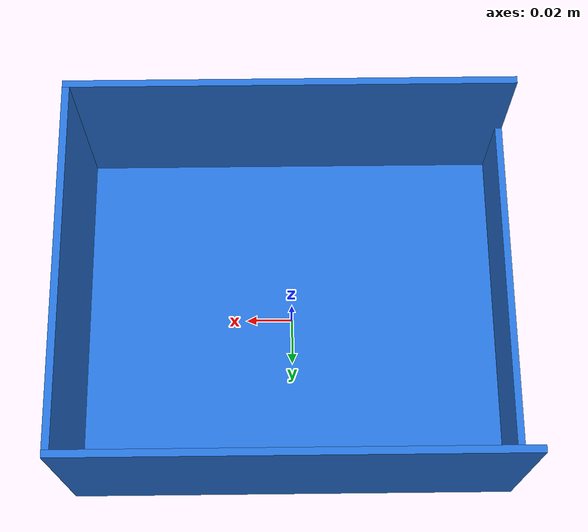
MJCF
<mujoco model="bin_blue">
  <compiler angle="radian" autolimits="true" texturedir="assets"/>

  <asset>
    <material name="plastic_mat"
              rgba="0.15 0.45 0.85 1.0"
              specular="0.5" shininess="0.1" reflectance="0.0"/>
    <texture name="bin_label_tex" type="2d" file="bin_label_blue.png"/>
    <material name="bin_label_mat"
              texture="bin_label_tex"
              texrepeat="1 1" texuniform="false"
              emission="0.6"
              specular="0.0" shininess="0.0" reflectance="0.0"/>
  </asset>

  <default>
    <default class="box_wall">
      <geom material="plastic_mat" condim="6"
            friction="0.6 0.005 0.0001"
            solimp="0.99 0.99 0.001" solref="0.01 1"/>
    </default>
  </default>

  <worldbody>
    <body name="bin_blue">
      <inertial mass="0.35" pos="0 0 0.04" diaginertia="4e-4 6e-4 8e-4"/>

      <geom name="floor" class="box_wall" type="box" size="0.090 0.075 0.0015" pos="0 0 0.0015"/>

      <!-- Short walls (±X) -->
      <geom name="wall_pos_x" class="box_wall" type="box" size="0.0015 0.075 0.040" pos="0.0915 0 0.040"/>
      <geom name="wall_neg_x" class="box_wall" type="box" size="0.0015 0.075 0.020" pos="-0.0915 0 0.020"/>

      <!-- Long walls (±Y) — 0.090 + 0.0015 + 0.0015 = 0.0930 -->
      <geom name="wall_pos_y" class="box_wall" type="box" size="0.0930 0.0015 0.040" pos="0 0.0765 0.040"/>
      <geom name="wall_neg_y" class="box_wall" type="box" size="0.0930 0.0015 0.040" pos="0 -0.0765 0.040"/>

      <!-- Label on +X wall — working rotation kept as-is -->
      <geom name="bin_label_pos_x" type="plane"
            size="0.0315 0.014 0.001"
            pos="0.0931 0 0.040"
            euler="0 1.5708 1.5708"
            material="bin_label_mat"
            contype="0" conaffinity="0"/>

      <!-- Label on -X wall — flipped 180 around Z -->
      <geom name="bin_label_neg_x" type="plane"
            size="0.0315 0.014 0.001"
            pos="-0.0931 0 0.020"
            euler="0 -1.5708 -1.5708"
            material="bin_label_mat"
            contype="0" conaffinity="0"/>

    </body>
  </worldbody>
</mujoco>
